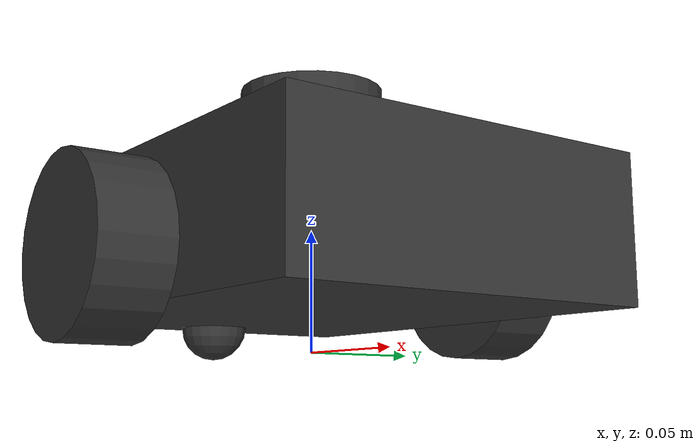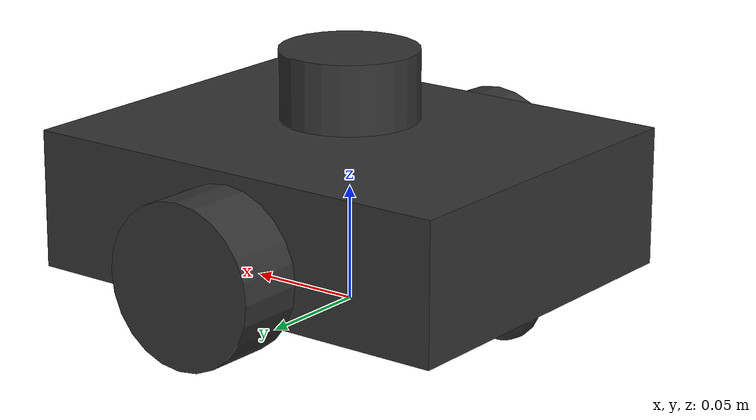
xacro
<?xml version="1.0"?>
<!-- TEST FIXTURE (stand-in for the course robot chiku, not the real file) -->
<robot name="chiku" xmlns:xacro="http://www.ros.org/wiki/xacro">
  <xacro:property name="wheel_r" value="0.035"/>
  <link name="base_footprint"/>
  <link name="base_link"><visual><geometry><box size="0.2 0.16 0.06"/></geometry><material name="m_base_link"><color rgba="0.2 0.2 0.2 1"/></material></visual><collision><geometry><box size="0.2 0.16 0.06"/></geometry></collision><inertial><mass value="0.5"/><inertia ixx="0.001" ixy="0" ixz="0" iyy="0.001" iyz="0" izz="0.001"/></inertial></link>
  <joint name="base_joint" type="fixed"><parent link="base_footprint"/><child link="base_link"/><origin xyz="0 0 0.045"/></joint>
  <xacro:macro name="wheel" params="side y">
    <link name="${side}_wheel"><visual><geometry><cylinder radius="${wheel_r}" length="0.03"/></geometry><material name="m_${side}_wheel"><color rgba="0.2 0.2 0.2 1"/></material></visual><collision><geometry><cylinder radius="${wheel_r}" length="0.03"/></geometry></collision><inertial><mass value="0.5"/><inertia ixx="0.001" ixy="0" ixz="0" iyy="0.001" iyz="0" izz="0.001"/></inertial></link>
    <joint name="${side}_wheel_joint" type="continuous"><parent link="base_link"/><child link="${side}_wheel"/><origin xyz="0 ${y} -0.01" rpy="-1.5708 0 0"/><axis xyz="0 0 1"/></joint>
  </xacro:macro>
  <xacro:wheel side="left" y="0.095"/>
  <xacro:wheel side="right" y="-0.095"/>
  <link name="caster"><visual><geometry><sphere radius="0.015"/></geometry><material name="m_caster"><color rgba="0.2 0.2 0.2 1"/></material></visual><collision><geometry><sphere radius="0.015"/></geometry></collision><inertial><mass value="0.5"/><inertia ixx="0.001" ixy="0" ixz="0" iyy="0.001" iyz="0" izz="0.001"/></inertial></link>
  <joint name="caster_joint" type="fixed"><parent link="base_link"/><child link="caster"/><origin xyz="-0.08 0 -0.03"/></joint>
  <link name="lidar_link"><visual><geometry><cylinder radius="0.03" length="0.03"/></geometry><material name="m_lidar_link"><color rgba="0.2 0.2 0.2 1"/></material></visual><collision><geometry><cylinder radius="0.03" length="0.03"/></geometry></collision><inertial><mass value="0.5"/><inertia ixx="0.001" ixy="0" ixz="0" iyy="0.001" iyz="0" izz="0.001"/></inertial></link>
  <joint name="lidar_joint" type="fixed"><parent link="base_link"/><child link="lidar_link"/><origin xyz="0 0 0.05"/></joint>
</robot>
